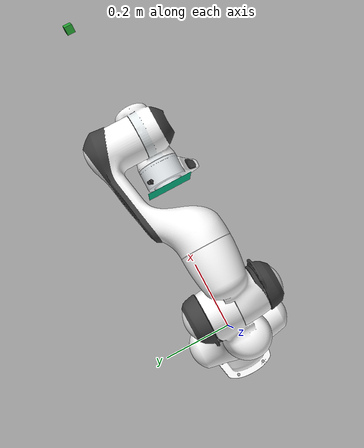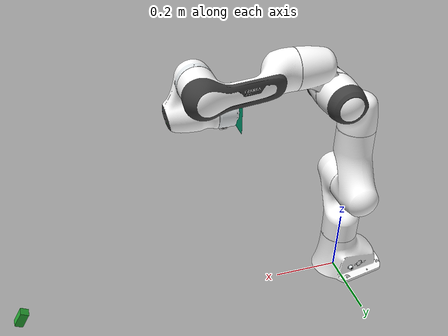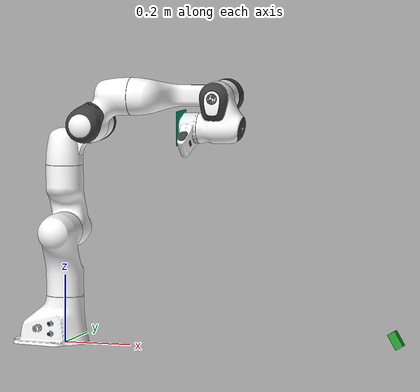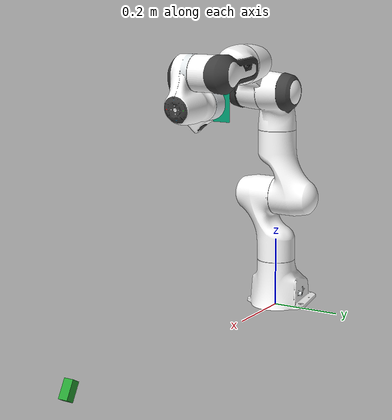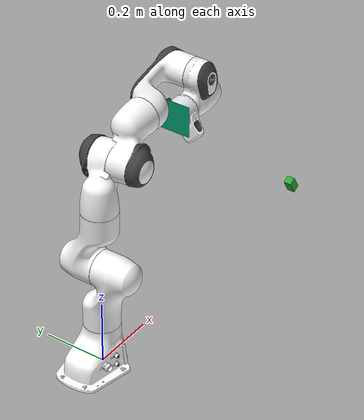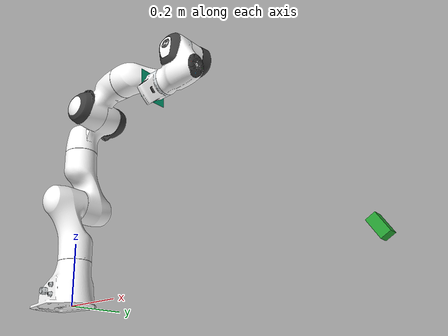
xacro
<?xml version="1.0" encoding="utf-8"?>
<robot xmlns:xacro="http://www.ros.org/wiki/xacro" name="panda">
  <xacro:arg name="robot_name" default="panda"/>

  <xacro:include filename="$(find franka_description)/robots/panda_arm.xacro"/>
  <xacro:include filename="$(find franka_description)/robots/panda_camera.xacro"/>
  <xacro:include filename="$(find franka_description)/robots/panda.gazebo.xacro"/>
  <xacro:include filename="$(find franka_description)/robots/panda.transmission.xacro"/>

  <xacro:include filename="$(find franka_description)/robots/panda_camera.gazebo.xacro"/>

  <xacro:panda_arm />
  <xacro:panda_camera ns="panda" connected_to="world" rpy="0 ${-pi/3} ${pi}" xyz="1 0 0.05"/>
  <!--Other frame with possible use with Aruco, this has the z pointing to the image-->
  <!--xacro:panda_camera ns="camera_ref" connected_to="world" rpy="0 ${-pi/3+pi/2} ${pi}" xyz="1 0 0.05"/-->

  <xacro:panda_gazebo robot_name="$(arg robot_name)" />
  <xacro:panda_camera_gazebo />

  <xacro:panda_transmission robot_name="$(arg robot_name)" />
</robot>

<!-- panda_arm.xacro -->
<robot xmlns:xacro="http://www.ros.org/wiki/xacro" name="panda">
  <xacro:macro name="panda_arm" params="arm_id:='panda' description_pkg:='franka_description' connected_to:='' xyz:='0 0 0' rpy:='0 0 0'">
    <xacro:unless value="${not connected_to}">
      <joint name="${arm_id}_joint_${connected_to}" type="fixed">
        <parent link="${connected_to}"/>
        <child link="${arm_id}_link0"/>
        <origin rpy="${rpy}" xyz="${xyz}"/>
      </joint>
    </xacro:unless>

    <xacro:property name="joint_damping" value="1.0"/>

    <link name="world" />

    <joint name="robot_to_world" type="fixed">
      <parent link="world" />
      <child link="${arm_id}_link0" />
      <origin xyz="0.0 0.0 0.0" rpy="0.0 0.0 0.0" />
      <dynamics damping="${joint_damping}"/>
    </joint>

    <link name="${arm_id}_link0">
      <visual>
        <geometry>
          <mesh filename="package://${description_pkg}/meshes/visual/link0.dae"/>
        </geometry>
      </visual>
      <collision>
        <geometry>
          <mesh filename="package://${description_pkg}/meshes/collision/link0.stl"/>
        </geometry>
      </collision>
      <inertial>
        <origin xyz="0 0 0" rpy="0 0 0"/>
        <mass value="3.06"/>
        <inertia ixx="0.3" ixy="0.0" ixz="0.0" iyy="0.3" iyz="0.0" izz="0.3"/>
      </inertial>
    </link>
    <link name="${arm_id}_link1">
      <visual>
        <geometry>
          <mesh filename="package://${description_pkg}/meshes/visual/link1.dae"/>
        </geometry>
      </visual>
      <collision>
        <geometry>
          <mesh filename="package://${description_pkg}/meshes/collision/link1.stl"/>
        </geometry>
      </collision>
      <inertial>
        <origin xyz="0 0 0" rpy="0 0 0"/>
        <mass value="2.34"/>
        <inertia ixx="0.3" ixy="0.0" ixz="0.0" iyy="0.3" iyz="0.0" izz="0.3"/>
      </inertial>
    </link>
    <joint name="${arm_id}_joint1" type="revolute">
      <safety_controller k_position="100.0" k_velocity="40.0" soft_lower_limit="-2.8973" soft_upper_limit="2.8973"/>
      <origin rpy="0 0 0" xyz="0 0 0.333"/>
      <parent link="${arm_id}_link0"/>
      <child link="${arm_id}_link1"/>
      <axis xyz="0 0 1"/>
      <limit effort="87" lower="-2.8973" upper="2.8973" velocity="2.1750"/>
      <dynamics damping="${joint_damping}"/>
    </joint>
    <link name="${arm_id}_link2">
      <visual>
        <geometry>
          <mesh filename="package://${description_pkg}/meshes/visual/link2.dae"/>
        </geometry>
      </visual>
      <collision>
        <geometry>
          <mesh filename="package://${description_pkg}/meshes/collision/link2.stl"/>
        </geometry>
      </collision>
      <inertial>
        <origin xyz="0 0 0" rpy="0 0 0"/>
        <mass value="2.36"/>
        <inertia ixx="0.3" ixy="0.0" ixz="0.0" iyy="0.3" iyz="0.0" izz="0.3"/>
      </inertial>
    </link>
    <joint name="${arm_id}_joint2" type="revolute">
      <safety_controller k_position="100.0" k_velocity="40.0" soft_lower_limit="-1.7628" soft_upper_limit="1.7628"/>
      <origin rpy="${-pi/2} 0 0" xyz="0 0 0"/>
      <parent link="${arm_id}_link1"/>
      <child link="${arm_id}_link2"/>
      <axis xyz="0 0 1"/>
      <limit effort="87" lower="-1.7628" upper="1.7628" velocity="2.1750"/>
      <dynamics damping="${joint_damping}"/>
    </joint>
    <link name="${arm_id}_link3">
      <visual>
        <geometry>
          <mesh filename="package://${description_pkg}/meshes/visual/link3.dae"/>
        </geometry>
      </visual>
      <collision>
        <geometry>
          <mesh filename="package://${description_pkg}/meshes/collision/link3.stl"/>
        </geometry>
      </collision>
      <inertial>
        <origin xyz="0 0 0" rpy="0 0 0"/>
        <mass value="2.38"/>
        <inertia ixx="0.3" ixy="0.0" ixz="0.0" iyy="0.3" iyz="0.0" izz="0.3"/>
      </inertial>
    </link>
    <joint name="${arm_id}_joint3" type="revolute">
      <safety_controller k_position="100.0" k_velocity="40.0" soft_lower_limit="-2.8973" soft_upper_limit="2.8973"/>
      <origin rpy="${pi/2} 0 0" xyz="0 -0.316 0"/>
      <parent link="${arm_id}_link2"/>
      <child link="${arm_id}_link3"/>
      <axis xyz="0 0 1"/>
      <limit effort="87" lower="-2.8973" upper="2.8973" velocity="2.1750"/>
      <dynamics damping="${joint_damping}"/>
    </joint>
    <link name="${arm_id}_link4">
      <visual>
        <geometry>
          <mesh filename="package://${description_pkg}/meshes/visual/link4.dae"/>
        </geometry>
      </visual>
      <collision>
        <geometry>
          <mesh filename="package://${description_pkg}/meshes/collision/link4.stl"/>
        </geometry>
      </collision>
      <inertial>
        <origin xyz="0 0 0" rpy="0 0 0"/>
        <mass value="2.43"/>
        <inertia ixx="0.3" ixy="0.0" ixz="0.0" iyy="0.3" iyz="0.0" izz="0.3"/>
      </inertial>
    </link>
    <joint name="${arm_id}_joint4" type="revolute">
      <safety_controller k_position="100.0" k_velocity="40.0" soft_lower_limit="-3.0718" soft_upper_limit="-0.0698"/>
      <origin rpy="${pi/2} 0 0" xyz="0.0825 0 0"/>
      <parent link="${arm_id}_link3"/>
      <child link="${arm_id}_link4"/>
      <axis xyz="0 0 1"/>
      <limit effort="87" lower="-3.0718" upper="-0.0698" velocity="2.1750"/>
      <dynamics damping="${joint_damping}"/>
    </joint>
    <link name="${arm_id}_link5">
      <visual>
        <geometry>
          <mesh filename="package://${description_pkg}/meshes/visual/link5.dae"/>
        </geometry>
      </visual>
      <collision>
        <geometry>
          <mesh filename="package://${description_pkg}/meshes/collision/link5.stl"/>
        </geometry>
      </collision>
      <inertial>
        <origin xyz="0 0 0" rpy="0 0 0"/>
        <mass value="3.5"/>
        <inertia ixx="0.3" ixy="0.0" ixz="0.0" iyy="0.3" iyz="0.0" izz="0.3"/>
      </inertial>
    </link>
    <joint name="${arm_id}_joint5" type="revolute">
      <safety_controller k_position="100.0" k_velocity="40.0" soft_lower_limit="-2.8973" soft_upper_limit="2.8973"/>
      <origin rpy="${-pi/2} 0 0" xyz="-0.0825 0.384 0"/>
      <parent link="${arm_id}_link4"/>
      <child link="${arm_id}_link5"/>
      <axis xyz="0 0 1"/>
      <limit effort="12" lower="-2.8973" upper="2.8973" velocity="2.6100"/>
      <dynamics damping="${joint_damping}"/>
    </joint>
    <link name="${arm_id}_link6">
      <visual>
        <geometry>
          <mesh filename="package://${description_pkg}/meshes/visual/link6.dae"/>
        </geometry>
      </visual>
      <collision>
        <geometry>
          <mesh filename="package://${description_pkg}/meshes/collision/link6.stl"/>
        </geometry>
      </collision>
      <inertial>
        <origin xyz="0 0 0" rpy="0 0 0"/>
        <mass value="1.47"/>
        <inertia ixx="0.3" ixy="0.0" ixz="0.0" iyy="0.3" iyz="0.0" izz="0.3"/>
      </inertial>
    </link>
    <joint name="${arm_id}_joint6" type="revolute">
      <safety_controller k_position="100.0" k_velocity="40.0" soft_lower_limit="-0.0175" soft_upper_limit="3.7525"/>
      <origin rpy="${pi/2} 0 0" xyz="0 0 0"/>
      <parent link="${arm_id}_link5"/>
      <child link="${arm_id}_link6"/>
      <axis xyz="0 0 1"/>
      <limit effort="12" lower="-0.0175" upper="3.7525" velocity="2.6100"/>
      <dynamics damping="${joint_damping}"/>
    </joint>
    <link name="${arm_id}_link7">
      <visual>
        <geometry>
          <mesh filename="package://${description_pkg}/meshes/visual/link7.dae"/>
        </geometry>
      </visual>
      <collision>
        <geometry>
          <mesh filename="package://${description_pkg}/meshes/collision/link7.stl"/>
        </geometry>
      </collision>
      <inertial>
        <origin xyz="0 0 0" rpy="0 0 0"/>
        <mass value="0.45"/>
        <inertia ixx="0.3" ixy="0.0" ixz="0.0" iyy="0.3" iyz="0.0" izz="0.3"/>
      </inertial>
    </link>
    <joint name="${arm_id}_joint7" type="revolute">
      <safety_controller k_position="100.0" k_velocity="40.0" soft_lower_limit="-2.8973" soft_upper_limit="2.8973"/>
      <origin rpy="${pi/2} 0 0" xyz="0.088 0 0"/>
      <parent link="${arm_id}_link6"/>
      <child link="${arm_id}_link7"/>
      <axis xyz="0 0 1"/>
      <limit effort="12" lower="-2.8973" upper="2.8973" velocity="2.6100"/>
      <dynamics damping="${joint_damping}"/>
    </joint>
    <link name="${arm_id}_link8">
      <inertial>
        <origin xyz="0 0 0" rpy="0 0 0"/>
        <mass value="0.001"/>
        <inertia ixx="0.3" ixy="0.0" ixz="0.0" iyy="0.3" iyz="0.0" izz="0.3"/>
      </inertial>
    </link>
    <joint name="${arm_id}_joint8" type="revolute">
      <origin rpy="0 0 0" xyz="0 0 0.107"/>
      <parent link="${arm_id}_link7"/>
      <child link="${arm_id}_link8"/>
      <axis xyz="0 0 1"/>
      <limit effort="1" lower="0" upper="0.1" velocity="0.1"/>
      <dynamics damping="100"/>
    </joint>

    <link name="marker_link">
    <visual>
      <geometry>
          <mesh filename="package://${description_pkg}/meshes/visual/marker.dae" scale="1 1 0.001"/>
      </geometry>
    </visual>
  </link>

  <joint name="marker_joint" type="fixed">
    <origin rpy="0 0 0" xyz="0 0 0.0011"/>
    <parent link="panda_link8"/>
    <child link="marker_link"/>
  </joint>

  </xacro:macro>

</robot>

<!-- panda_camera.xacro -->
<robot xmlns:xacro="http://www.ros.org/wiki/xacro" name="panda_camera">
  <xacro:macro name="panda_camera" params="connected_to:='' ns:='' rpy:='' xyz:='' ">
  <xacro:unless value="${connected_to == ''}">
    <joint name="${ns}_camera_joint" type="fixed">
      <parent link="${connected_to}"/>
      <child link="${ns}_camera"/>
      <origin xyz="${xyz}" rpy="${rpy}"/>
    </joint>
  </xacro:unless>

  <xacro:property name="cameraSize" value="0.05"/>

  <link name="${ns}_camera">
    <visual>
      <geometry>
          <box size="${cameraSize} ${0.5*cameraSize} ${0.5*cameraSize}"/>
      </geometry>
      <material name="green"/>
    </visual>
    <collision>
      <geometry>
          <box size="${cameraSize} ${0.5*cameraSize} ${0.5*cameraSize}"/>
      </geometry>
    </collision>
    <inertial>
      <origin xyz="0 0 0" rpy="0 0 0"/>
      <mass value="0.1"/>
      <inertia ixx="0.01" ixy="0.0" ixz="0.0" iyy="0.01" iyz="0.0" izz="0.01"/>
    </inertial>
  </link>

  </xacro:macro>

</robot>
